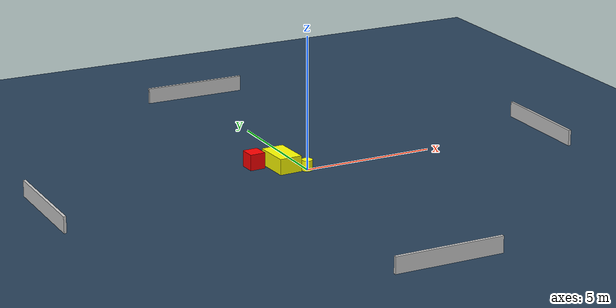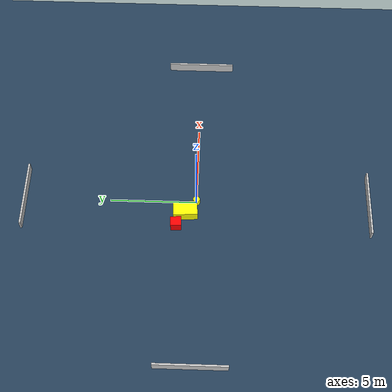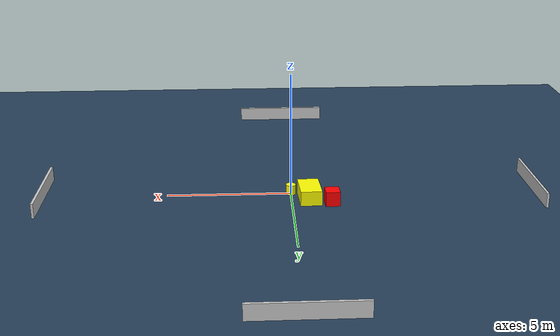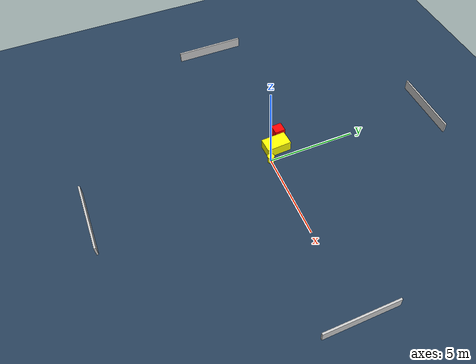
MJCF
<?xml version="1.0" ?>
<mujoco model="generated_environment">
  <option timestep="0.01" integrator="RK4" cone="elliptic"/>
  <default>
    <geom density="1"/>
  </default>
  <asset>
    <texture builtin="gradient" height="3072" name="skybox" rgb1="0.3 0.5 0.7" rgb2="0 0 0" type="skybox" width="512"/>
    <texture builtin="checker" height="300" name="groundplane" rgb1="0.2 0.3 0.4" rgb2="0.1 0.2 0.3" type="2d" width="300"/>
    <material name="groundplane" reflectance="0.2" texrepeat="5 5" texture="groundplane"/>
  </asset>
  <worldbody>
    <light dir="0 0 -1" directional="true" pos="0 0 1.5"/>
    <geom condim="3" friction="0.5 0.005 0.001" material="groundplane" name="floor" pos="0 0 0" size="0 0 0.05" type="plane"/>
    <body name="walls">
      <geom name="wall_1" condim="4" pos="-10.0 0.0 0.3" rgba="0.800000011920929 0.800000011920929 0.800000011920929 1.0" size="0.05 2.0 0.3" type="box"/>
      <geom name="wall_2" condim="4" pos="10.0 0.0 0.3" rgba="0.800000011920929 0.800000011920929 0.800000011920929 1.0" size="0.05 2.0 0.3" type="box"/>
      <geom name="wall_3" condim="4" pos="0.0 -10.0 0.3" rgba="0.800000011920929 0.800000011920929 0.800000011920929 1.0" size="2.0 0.05 0.3" type="box"/>
      <geom name="wall_4" condim="4" pos="0.0 10.0 0.3" rgba="0.800000011920929 0.800000011920929 0.800000011920929 1.0" size="2.0 0.05 0.3" type="box"/>
    </body>
    <body name="robot">
      <joint name="joint_x" type="slide" pos="0 0 0" axis="1 0 0"/>
      <joint name="joint_y" type="slide" pos="0 0 0" axis="0 1 0"/>
      <geom name="robot" type="cylinder" pos="0.0 0.0 0.2" size="0.2 0.2 0.0" mass="5.0" friction="1.0 0.005 0.0001" condim="4" rgba="1.0 1.0 0.0 1.0"/>
    </body>
    <body name="obstacle_1_movable">
      <geom name="obstacle_1_movable" condim="4" pos="-0.7189742140216968 0.6274696341089617 0.3" euler="0 0 272.75955184884543" friction="0.0 0.005 0.001" rgba="1.0 1.0 0.0 1.0" size="0.6993110345959468 0.42876160480052977 0.3" type="box" mass="0.1"/>
      <joint type="free"/>
    </body>
    <body name="obstacle_2_static">
      <geom name="obstacle_2_static" condim="4" pos="-1.5866123049007927 1.1324309118244698 0.3" euler="0 0 182.48122325668987" friction="0.0 0.005 0.001" rgba="1.0 0.0 0.0 1.0" size="0.28969881279504295 0.30296125300014576 0.3" type="box"/>
    </body>
  </worldbody>
  <actuator>
    <motor name="actuator_x" joint="joint_x" gear="1" ctrlrange="-1 1"/>
    <motor name="actuator_y" joint="joint_y" gear="1" ctrlrange="-1 1"/>
  </actuator>
</mujoco>
